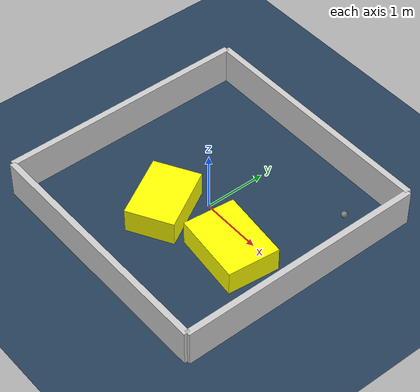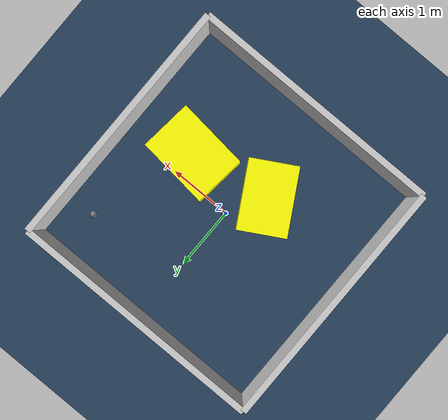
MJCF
<?xml version="1.0" ?>
<mujoco model="generated_environment">
  <option timestep="0.01" integrator="RK4" cone="elliptic"/>
  <default>
    <geom density="1"/>
  </default>
  <asset>
    <texture builtin="gradient" height="3072" rgb1="0.3 0.5 0.7" rgb2="0 0 0" type="skybox" width="512"/>
    <texture builtin="checker" height="300" mark="edge" markrgb="0.8 0.8 0.8" name="groundplane" rgb1="0.2 0.3 0.4" rgb2="0.1 0.2 0.3" type="2d" width="300"/>
    <material name="groundplane" reflectance="0.2" texrepeat="5 5" texture="groundplane" texuniform="true"/>
    <material name="robot" rgba="0.0 1.0 0.0 1"/>
  </asset>
  <worldbody>
    <light dir="0 0 -1" directional="true" pos="0 0 1.5"/>
    <geom condim="4" friction="1.0 0.005 0.001" material="groundplane" name="floor" size="0 0 0.05" type="plane"/>
    <body name="walls">
      <geom name="wall_1" condim="4" pos="-2.0 0.0 0.3" rgba="0.800000011920929 0.800000011920929 0.800000011920929 1.0" size="0.05 2.0 0.3" type="box"/>
      <geom name="wall_2" condim="4" pos="2.0 0.0 0.3" rgba="0.800000011920929 0.800000011920929 0.800000011920929 1.0" size="0.05 2.0 0.3" type="box"/>
      <geom name="wall_3" condim="4" pos="0.0 -2.0 0.3" rgba="0.800000011920929 0.800000011920929 0.800000011920929 1.0" size="2.0 0.05 0.3" type="box"/>
      <geom name="wall_4" condim="4" pos="0.0 2.0 0.3" rgba="0.800000011920929 0.800000011920929 0.800000011920929 1.0" size="2.0 0.05 0.3" type="box"/>
    </body>
    <body name="robot">
      <joint name="joint_x" type="slide" pos="0 0 0" axis="1 0 0"/>
      <joint name="joint_y" type="slide" pos="0 0 0" axis="0 1 0"/>
      <geom name="robot" type="sphere" pos="1.4999500911033428 1.2729796870881542 0.2" size="0.05" mass="5." friction="1.0 0.005 0.0001" condim="4"/>
      <site name="sensor_ball"/>
    </body>
    <body name="obstacle_1_movable">
      <geom name="obstacle_1_movable" condim="4" pos="-0.3305567562920655 -0.5661799967318435 0.2" euler="0 0 119.64489402389918" friction="1.0 0.005 0.001" rgba="1 1 0 1" size="0.5382254358606874 0.38032218138994506 0.2" type="box" mass="0.1"/>
      <joint type="free"/>
    </body>
    <body name="obstacle_2_movable">
      <geom name="obstacle_2_movable" condim="4" pos="0.93123056109731 -0.36300861744865665 0.2" euler="0 0 83.87527225910858" friction="1.0 0.005 0.001" rgba="1 1 0 1" size="0.41670901402986277 0.5716869866411928 0.2" type="box" mass="0.1"/>
      <joint type="free"/>
    </body>
  </worldbody>
  <actuator>
    <motor name="actuator_x" joint="joint_x" gear="1" ctrlrange="-1 1"/>
    <motor name="actuator_y" joint="joint_y" gear="1" ctrlrange="-1 1"/>
  </actuator>
</mujoco>
